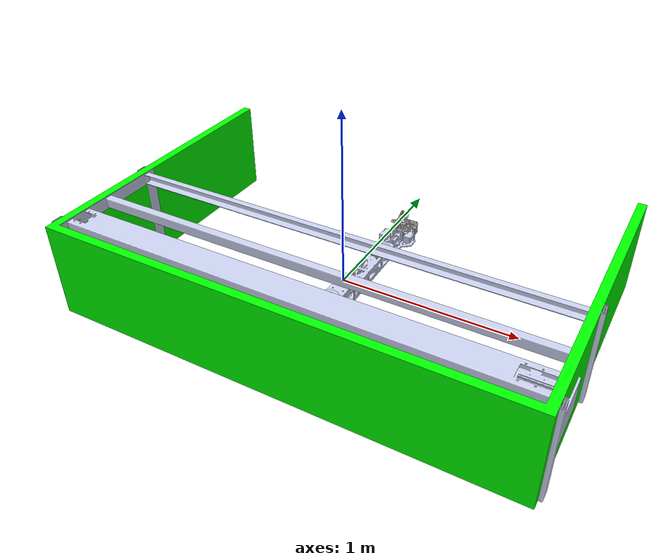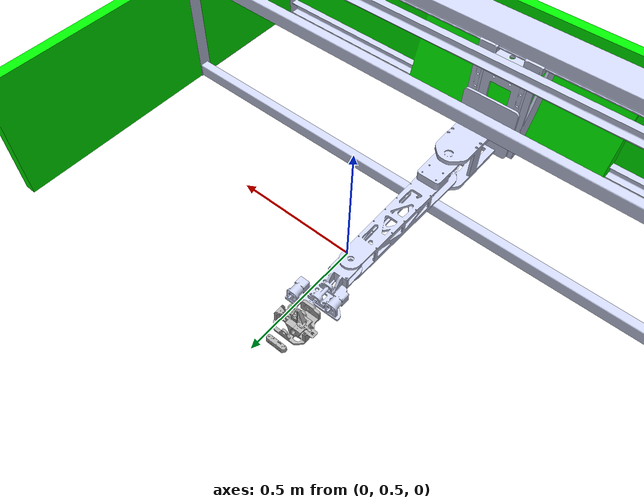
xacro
<?xml version="1.0"?>
<robot xmlns:xacro="http://www.ros.org/wiki/xacro" name="scara">

<xacro:arg name="interface" default="Position" />

<xacro:include filename="$(find scara)/urdf/joints_pos_and_orient.xacro" />
<xacro:include filename="$(find scara)/urdf/joints_positions_limits.xacro" />
<xacro:include filename="$(find scara)/urdf/joints_vel_effort_limits.xacro" />

<xacro:include filename="$(find scara)/urdf/transmission_interface.xacro" >
  <xacro:arg name="interface" value="$(arg interface)" />
</xacro:include>

<!-- workspace -->
  <link
    name="workspace">
    <visual>
      <origin
        xyz="0 0 0"
        rpy="0 0 0" />
      <geometry>
        <mesh
          filename="package://scara/meshes/workspace.STL" />
      </geometry>
      <material
        name="">
        <color
          rgba="0 1 0 1" />
      </material>
    </visual>
    <collision>
      <origin
        xyz="0 0 0"
        rpy="0 0 0" />
      <geometry>
        <mesh
          filename="package://scara/meshes/workspace.STL" />
      </geometry>
    </collision>
  </link>
  <joint
    name="joint_workspace"
    type="fixed">
    <origin
      xyz="-1.3 -0.71 0.35 "
      rpy="-1.57 0 0" />
    <parent
      link="base_link" />
    <child
      link="workspace" />
    <axis
      xyz="0 0 0"/>
  </joint>
<!-- workspace -->

  <link
    name="base_link">
    <visual>
      <origin
        xyz="0 0 0"
        rpy="0 0 0" />
      <geometry>
        <mesh
          filename="package://scara/meshes/base_link.STL" />
      </geometry>
      <material
        name="">
        <color
          rgba="0.792156862745098 0.819607843137255 0.933333333333333 1" />
      </material>
    </visual>
    <collision>
      <origin
        xyz="0 0 0"
        rpy="0 0 0" />
      <geometry>
        <mesh
          filename="package://scara/meshes/base_link.STL" />
      </geometry>
    </collision>
  </link>
  <link
    name="link1">
    <inertial>
      <origin
        xyz="1.19878552448249E-08 -0.0566665222113448 0.0555794084913767"
        rpy="0 0 0" />
      <mass
        value="4.040716147874" />
      <inertia
        ixx="0.0451677001380163"
        ixy="5.56860884483533E-11"
        ixz="3.39876367264579E-09"
        iyy="0.0192181187752075"
        iyz="0.00431944689682912"
        izz="0.0546998546523674" />
    </inertial>
    <visual>
      <origin
        xyz="0 0 0"
        rpy="0 0 0" />
      <geometry>
        <mesh
          filename="package://scara/meshes/link1.STL" />
      </geometry>
      <material
        name="">
        <color
          rgba="0.792156862745098 0.819607843137255 0.933333333333333 1" />
      </material>
    </visual>
    <collision>
      <origin
        xyz="0 0 0"
        rpy="0 0 0" />
      <geometry>
        <mesh
          filename="package://scara/meshes/link1_collision.STL" />
      </geometry>
    </collision>
  </link>
  <joint
    name="joint1"
    type="prismatic">
    <origin
      xyz="${joint1_origin_x} ${joint1_origin_y} ${joint1_origin_z}"
      rpy="${joint1_origin_roll} ${joint1_origin_pitch} ${joint1_origin_yaw}" />
    <parent
      link="base_link" />
    <child
      link="link1" />
    <axis
      xyz="${joint1_axis_x} ${joint1_axis_y} ${joint1_axis_z}"/>
    <limit
      lower="${joint1_limit_lower}"
      upper="${joint1_limit_upper}"
      effort="${joint1_effort_limit}"
      velocity="${joint1_vel_limit}" />
  </joint>
  <link
    name="link2">
    <inertial>
      <origin
        xyz="3.27615577968965E-05 -0.119452850148733 0.0850007806663469"
        rpy="0 0 0" />
      <mass
        value="2.71095927479154" />
      <inertia
        ixx="0.0168764628872358"
        ixy="-2.54489981102525E-07"
        ixz="3.69315769698535E-07"
        iyy="0.0127017150700867"
        iyz="-2.03836361116533E-06"
        izz="0.0193539492383244" />
    </inertial>
    <visual>
      <origin
        xyz="0 0 0"
        rpy="0 0 0" />
      <geometry>
        <mesh
          filename="package://scara/meshes/link2.STL" />
      </geometry>
      <material
        name="">
        <color
          rgba="0.792156862745098 0.819607843137255 0.933333333333333 1" />
      </material>
    </visual>
    <collision>
      <origin
        xyz="0 0 0"
        rpy="0 0 0" />
      <geometry>
        <mesh
          filename="package://scara/meshes/link2_collision.STL" />
      </geometry>
    </collision>
  </link>
  <joint
    name="joint2"
    type="prismatic">
    <origin
      xyz="${joint2_origin_x} ${joint2_origin_y} ${joint2_origin_z}"
      rpy="${joint2_origin_roll} ${joint2_origin_pitch} ${joint2_origin_yaw}"/>
    <parent
      link="link1" />
    <child
      link="link2" />
    <axis
      xyz="${joint2_axis_x} ${joint2_axis_y} ${joint2_axis_z}"/>
    <limit
      lower="${joint2_limit_lower}"
      upper="${joint2_limit_upper}"
      effort="${joint2_effort_limit}"
      velocity="${joint2_vel_limit}" />
  </joint>
  <link
    name="link3">
    <inertial>
      <origin
        xyz="2.55806299244636E-06 0.234601171013279 0.063528785222903"
        rpy="0 0 0" />
      <mass
        value="1.95480945031765" />
      <inertia
        ixx="0.046819248304117"
        ixy="-1.58937774983386E-08"
        ixz="-2.15436090230512E-07"
        iyy="0.00179698664917751"
        iyz="2.70552857525037E-05"
        izz="0.0482826739943195" />
    </inertial>
    <visual>
      <origin
        xyz="0 0 0"
        rpy="0 0 0" />
      <geometry>
        <mesh
          filename="package://scara/meshes/link3.STL" />
      </geometry>
      <material
        name="">
        <color
          rgba="0.792156862745098 0.819607843137255 0.933333333333333 1" />
      </material>
    </visual>
    <collision>
      <origin
        xyz="0 0 0"
        rpy="0 0 0" />
      <geometry>
        <mesh
          filename="package://scara/meshes/link3_collision.STL" />
      </geometry>
    </collision>
  </link>
  <joint
    name="joint3"
    type="revolute">
    <origin
      xyz="${joint3_origin_x} ${joint3_origin_y} ${joint3_origin_z}"
      rpy="${joint3_origin_roll} ${joint3_origin_pitch} ${joint3_origin_yaw}"/>
    <parent
      link="link2" />
    <child
      link="link3" />
    <axis
      xyz="${joint3_axis_x} ${joint3_axis_y} ${joint3_axis_z}"/>
    <limit
      lower="${joint3_limit_lower}"
      upper="${joint3_limit_upper}"
      effort="${joint3_effort_limit}"
      velocity="${joint3_vel_limit}" />
  </joint>
  <link
    name="link4">
    <inertial>
      <origin
        xyz="0.00254531084455429 0.131399127677691 -0.0378778716950119"
        rpy="0 0 0" />
      <mass
        value="10000.786723404193381" />
      <inertia
        ixx="0.000645667639668652"
        ixy="-0.000107269746287278"
        ixz="6.31996560397261E-08"
        iyy="0.000696920367916564"
        iyz="1.18658022128686E-06"
        izz="0.0012197310075711" />
    </inertial>
    <visual>
      <origin
        xyz="0 0 0"
        rpy="0 0 0" />
      <geometry>
        <mesh
          filename="package://scara/meshes/link4.STL" />
      </geometry>
      <material
        name="">
        <color
          rgba="0.792156862745098 0.819607843137255 0.933333333333333 1" />
      </material>
    </visual>
    <collision>
      <origin
        xyz="0 0 0"
        rpy="0 0 0" />
      <geometry>
        <mesh
          filename="package://scara/meshes/link4_collision.STL" />
      </geometry>
    </collision>
  </link>
  <joint
    name="joint4"
    type="revolute">
    <origin
      xyz="${joint4_origin_x} ${joint4_origin_y} ${joint4_origin_z}"
      rpy="${joint4_origin_roll} ${joint4_origin_pitch} ${joint4_origin_yaw}"/>
    <parent
      link="link3" />
    <child
      link="link4" />
    <axis
      xyz="${joint4_axis_x} ${joint4_axis_y} ${joint4_axis_z}"/>
    <limit
      lower="${joint4_limit_lower}"
      upper="${joint4_limit_upper}"
      effort="${joint4_effort_limit}"
      velocity="${joint4_vel_limit}" />
  </joint>
  <link
    name="link5">
    <inertial>
      <origin
        xyz="-0.0027169894383121 0.0819942184266494 0.00372948789989049"
        rpy="0 0 0" />
      <mass
        value="0.169198995178037" />
      <inertia
        ixx="2.64626448798208E-05"
        ixy="-2.52574711215771E-08"
        ixz="-1.82230368763991E-07"
        iyy="6.64396041019951E-05"
        iyz="-1.9773051111738E-09"
        izz="6.23548614781698E-05" />
    </inertial>
    <visual>
      <origin
        xyz="0 0 0"
        rpy="0 0 0" />
      <geometry>
        <mesh
          filename="package://scara/meshes/link5.STL" />
      </geometry>
      <material
        name="">
        <color
          rgba="0.686274509803922 0.686274509803922 0.686274509803922 1" />
      </material>
    </visual>
    <collision>
      <origin
        xyz="0 0 0"
        rpy="0 0 0" />
      <geometry>
        <mesh
          filename="package://scara/meshes/link5_collision.STL" />
      </geometry>
    </collision>
  </link>
  <joint
    name="joint5"
    type="revolute">
    <origin
      xyz="${joint5_origin_x} ${joint5_origin_y} ${joint5_origin_z}"
      rpy="${joint5_origin_roll} ${joint5_origin_pitch} ${joint5_origin_yaw}"/>
    <parent
      link="link4" />
    <child
      link="link5" />
    <axis
      xyz="${joint5_axis_x} ${joint5_axis_y} ${joint5_axis_z}"/>
    <limit
      lower="${joint5_limit_lower}"
      upper="${joint5_limit_upper}"
      effort="${joint5_effort_limit}"
      velocity="${joint5_vel_limit}" />
  </joint>
  <link
    name="camera">
    <inertial>
      <origin
        xyz="-1.26010313294955E-14 6.88338275267597E-15 -0.000249999999813635"
        rpy="0 0 0" />
      <mass
        value="3.92699081698724E-05" />
      <inertia
        ixx="2.46255049148575E-10"
        ixy="-1.62927787543527E-36"
        ixz="-8.75268974036926E-22"
        iyy="2.46255049148575E-10"
        iyz="4.55231734668369E-25"
        izz="4.90873852123406E-10" />
    </inertial>
    <visual>
      <origin
        xyz="0 0 0"
        rpy="0 0 0" />
      <geometry>
        <mesh
          filename="package://scara/meshes/camera.STL" />
      </geometry>
      <material
        name="">
        <color
          rgba="1 0.168627450980392 0.168627450980392 1" />
      </material>
    </visual>
    <collision>
      <origin
        xyz="0 0 0"
        rpy="0 0 0" />
      <geometry>
        <mesh
          filename="package://scara/meshes/camera.STL" />
      </geometry>
    </collision>
  </link>
  <joint
    name="joint_camera "
    type="fixed">
    <origin
      xyz="${joint_camera_origin_x} ${joint_camera_origin_y} ${joint_camera_origin_z}"
      rpy="${joint_camera_origin_roll} ${joint_camera_origin_pitch} ${joint_camera_origin_yaw}"/>
    <parent
      link="link5" />
    <child
      link="camera" />
    <axis
      xyz="${joint_camera_axis_x} ${joint_camera_axis_y} ${joint_camera_axis_z}"/>
    <limit
      lower="0"
      upper="0"
      effort="0"
      velocity="0" />
  </joint>
  <link
    name="effector">
    <inertial>
      <origin
        xyz="-2.16248243270489E-13 7.21644966006352E-15 0.000250000000068184"
        rpy="0 0 0" />
      <mass
        value="0.00015707963267949" />
      <inertia
        ixx="3.93026330933473E-09"
        ixy="-2.6919120769085E-35"
        ixz="-1.40394202554195E-20"
        iyy="3.93026330933473E-09"
        iyz="7.54624742293239E-24"
        izz="7.85398163397448E-09" />
    </inertial>
    <visual>
      <origin
        xyz="0 0 0"
        rpy="0 0 0" />
      <geometry>
        <mesh
          filename="package://scara/meshes/effector.STL" />
      </geometry>
      <material
        name="">
        <color
          rgba="0.341176470588235 0.83921568627451 0.411764705882353 1" />
      </material>
    </visual>
    <collision>
      <origin
        xyz="0 0 0"
        rpy="0 0 0" />
      <geometry>
        <mesh
          filename="package://scara/meshes/effector.STL" />
      </geometry>
    </collision>
  </link>
  <joint
    name="joint7"
    type="revolute">
    <origin
      xyz="${joint7_origin_x} ${joint7_origin_y} ${joint7_origin_z}"
      rpy="${joint7_origin_roll} ${joint7_origin_pitch} ${joint7_origin_yaw}"/>
    <parent
      link="camera" />
    <child
      link="effector" />
    <axis
      xyz="${joint7_axis_x} ${joint7_axis_y} ${joint7_axis_z}"/>
    <limit
      lower="${joint7_limit_lower}"
      upper="${joint7_limit_upper}"
      effort="${joint7_effort_limit}"
      velocity="${joint7_vel_limit}" />
  </joint>
  <link
    name="link6">
    <inertial>
      <origin
        xyz="-0.024961 0.061805 -0.01112"
        rpy="0 0 0" />
      <mass
        value="0.038714" />
      <inertia
        ixx="7.954E-06"
        ixy="-3.1321E-09"
        ixz="-2.223E-07"
        iyy="6.5369E-06"
        iyz="1.6866E-07"
        izz="6.7152E-06" />
    </inertial>
    <visual>
      <origin
        xyz="0 0 0"
        rpy="0 0 0" />
      <geometry>
        <mesh
          filename="package://scara/meshes/passive_link3.STL" />
      </geometry>
      <material
        name="">
        <color
          rgba="0.68627 0.68627 0.68627 1" />
      </material>
    </visual>
    <collision>
      <origin
        xyz="0 0 0"
        rpy="0 0 0" />
      <geometry>
        <mesh
          filename="package://scara/meshes/passive_link3_collision.STL" />
      </geometry>
    </collision>
  </link>
  <joint
    name="joint6"
    type="prismatic">
    <origin
      xyz="${joint6_origin_x} ${joint6_origin_y} ${joint6_origin_z}"
      rpy="${joint6_origin_roll} ${joint6_origin_pitch} ${joint6_origin_yaw}"/>
    <parent
      link="effector" />
    <child
      link="link6" />
    <axis
      xyz="${joint6_axis_x} ${joint6_axis_y} ${joint6_axis_z}"/>
    <limit
      lower="${joint6_limit_lower}"
      upper="${joint6_limit_upper}"
      effort="${joint6_effort_limit}"
      velocity="${joint6_vel_limit}" />
  </joint>
  <link
    name="link6_mimic">
    <inertial>
      <origin
        xyz="-0.024961 0.061805 -0.01112"
        rpy="0 0 0" />
      <mass
        value="0.038714" />
      <inertia
        ixx="7.954E-06"
        ixy="-3.1321E-09"
        ixz="-2.223E-07"
        iyy="6.5369E-06"
        iyz="1.6866E-07"
        izz="6.7152E-06" />
    </inertial>
    <visual>
      <origin
        xyz="0 0 0"
        rpy="0 0 0" />
      <geometry>
        <mesh
          filename="package://scara/meshes/passive_link3.STL" />
      </geometry>
      <material
        name="">
        <color
          rgba="0.68627 0.68627 0.68627 1" />
      </material>
    </visual>
    <collision>
      <origin
        xyz="0 0 0"
        rpy="0 0 0" />
      <geometry>
        <mesh
          filename="package://scara/meshes/passive_link3_collision.STL" />
      </geometry>
    </collision>
  </link>
  <joint
    name="joint6_mimic"
    type="prismatic">
    <origin
      xyz="${joint6_mimic_origin_x} ${joint6_mimic_origin_y} ${joint6_mimic_origin_z}"
      rpy="${joint6_mimic_origin_roll} ${joint6_mimic_origin_pitch} ${joint6_mimic_origin_yaw}"/>
    <parent
      link="link6" />
    <child
      link="link6_mimic" />
    <axis
      xyz="${joint6_mimic_axis_x} ${joint6_mimic_axis_y} ${joint6_mimic_axis_z}"/>
    <limit
      lower="${joint6_mimic_limit_lower}"
      upper="${joint6_mimic_limit_upper}"
      effort="${joint6_mimic_effort_limit}"
      velocity="${joint6_mimic_vel_limit}" />
    <mimic
      joint="joint6"
      multiplier="2.0"
      offset="0.0" />
  </joint>
</robot>

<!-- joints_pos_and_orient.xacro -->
<robot xmlns:xacro="http://www.ros.org/wiki/xacro">

<xacro:property name="PI" value="3.14159265358979" />
<xacro:property name="R1" value="0.62" />
<xacro:property name="Zx" value="0.0" />
<xacro:property name="Zy" value="0.0" />
<xacro:property name="Zz" value="0.0" />
<xacro:property name="C1x" value="0" />
<xacro:property name="C1y" value="0.005" />
<xacro:property name="C1z" value="-0.0035925695657901616" />
<xacro:property name="C2x" value="0.0" />
<xacro:property name="C2y" value="0.02" />
<xacro:property name="C2z" value="0.012105270670150039" />
<xacro:property name="Ax" value="0.0" />
<xacro:property name="Ay" value="0.0" />
<xacro:property name="Az" value="0.0" />

<!-- MARKER or CAMERA -->
<xacro:property name="MorC" value="False"/>
<xacro:if value="${MorC}">
  <!--MARKER-->
  <xacro:property name="Mx" value="0.057" />
  <xacro:property name="My" value="0.12" />
  <xacro:property name="Mz" value="-0.030" />
  <xacro:property name="MR" value="0" />
  <xacro:property name="MP" value="0" />
  <xacro:property name="MY" value="0" />
  <xacro:property name="Ex" value="${0.0-Mx}" />
  <xacro:property name="Ey" value="${0.088-My}" />
  <xacro:property name="Ez" value="${0.100-Mz}" />
  <xacro:property name="ER" value="0" />
  <xacro:property name="EP" value="0" />
  <xacro:property name="EY" value="0" />
</xacro:if>
<xacro:unless value="${MorC}">
  <!--CAMERA-->
<!-- CAMERA PRZESUNIETA -5mm w osi X -->
  <xacro:property name="Mx" value="0.032601745797096515" />
  <xacro:property name="My" value="0.18453171300522642" />
  <xacro:property name="Mz" value="-0.016973848757969097" />
  <xacro:property name="MR" value="0.03229564301791958" />
  <xacro:property name="MP" value="0.01538194006569883" />
  <xacro:property name="MY" value="3.0730648401106975" />
  <xacro:property name="Ex" value="0.021813034020402734" />
  <xacro:property name="Ey" value="0.10121358042023153" />
  <xacro:property name="Ez" value="0.11614025325711313" />
  <xacro:property name="ER" value="0.033275922973526405" />
  <xacro:property name="EP" value="0.013126573220331348" />
  <xacro:property name="EY" value="-3.072598006090227" />
</xacro:unless>

<!-- Joint between baselink and link1 (axis X) -->
<xacro:property name="joint1_origin_x"           value="0.0" />
<xacro:property name="joint1_origin_y"           value="-0.482199999592743" />
<xacro:property name="joint1_origin_z"           value="0.0172" />
<xacro:property name="joint1_origin_roll"        value="-${PI/2}" />
<xacro:property name="joint1_origin_pitch"       value="0.0" />
<xacro:property name="joint1_origin_yaw"         value="-${PI}" />

<xacro:property name="joint1_axis_x"             value="1" />
<xacro:property name="joint1_axis_y"             value="0" />
<xacro:property name="joint1_axis_z"             value="0" />

<!-- Joint between link1 and link2 (axis Z) -->
<xacro:property name="joint2_origin_x"           value="0.0" />
<xacro:property name="joint2_origin_y"           value="0.0" />
<xacro:property name="joint2_origin_z"           value="-0.052" />
<xacro:property name="joint2_origin_roll"        value="${Zx + PI/2}" />
<xacro:property name="joint2_origin_pitch"       value="${Zz}" />     <!-- ZAMIENIONE OSIE! -->
<xacro:property name="joint2_origin_yaw"         value="${-Zy + PI}" /><!-- ZAMIENIONE OSIE! -->

<xacro:property name="joint2_axis_x"             value="0" />
<xacro:property name="joint2_axis_y"             value="0" />
<xacro:property name="joint2_axis_z"             value="1" />

<!-- Joint between link2 and link3 (axis C1 - big arm) -->
<xacro:property name="joint3_origin_x"           value="0.0" />
<xacro:property name="joint3_origin_y"           value="-0.285" />
<xacro:property name="joint3_origin_z"           value="0.0407" />
<xacro:property name="joint3_origin_roll"        value="${C1x}" />
<xacro:property name="joint3_origin_pitch"       value="${-C1y}" />
<xacro:property name="joint3_origin_yaw"         value="${PI - C1z}" />

<xacro:property name="joint3_axis_x"             value="0" />
<xacro:property name="joint3_axis_y"             value="0" />
<xacro:property name="joint3_axis_z"             value="1" />

<!-- Joint between link3 and link4 (axis C2 - small arm) -->
<xacro:property name="joint4_origin_x"           value="0.0" />
<xacro:property name="joint4_origin_y"           value="${R1}" />
<xacro:property name="joint4_origin_z"           value="0.0436798" />
<xacro:property name="joint4_origin_roll"        value="${-PI+C2x}" />
<xacro:property name="joint4_origin_pitch"       value="${-C2y}" />
<xacro:property name="joint4_origin_yaw"         value="${PI-C2z}" />

<xacro:property name="joint4_axis_x"             value="0" />
<xacro:property name="joint4_axis_y"             value="0" />
<xacro:property name="joint4_axis_z"             value="1" />

<!-- Joint between link4 and link5 (axis A - inclination of the gripper) -->
<xacro:property name="joint5_origin_x"           value="0.0" />
<xacro:property name="joint5_origin_y"           value="0.23389" />
<xacro:property name="joint5_origin_z"           value="-0.03732" />
<xacro:property name="joint5_origin_roll"        value="${-Ax}" />
<xacro:property name="joint5_origin_pitch"       value="${-Ay}" />
<xacro:property name="joint5_origin_yaw"         value="${Az}" />

<xacro:property name="joint5_axis_x"             value="0" />
<xacro:property name="joint5_axis_y"             value="-1" />
<xacro:property name="joint5_axis_z"             value="0" />

<!-- Joint between link5 and camera (additional joint - allways fixed) -->
<xacro:property name="joint_camera_origin_x"     value="${Mx}" />
<xacro:property name="joint_camera_origin_y"     value="${My}" />
<xacro:property name="joint_camera_origin_z"     value="${Mz}" />
<xacro:property name="joint_camera_origin_roll"  value="${MR}" />
<xacro:property name="joint_camera_origin_pitch" value="${MP}" />
<xacro:property name="joint_camera_origin_yaw"   value="${MY}" />

<xacro:property name="joint_camera_axis_x"       value="0" />
<xacro:property name="joint_camera_axis_y"       value="0" />
<xacro:property name="joint_camera_axis_z"     	 value="1" />

<!-- Joint between camera and effector (additional joint - degree of freedom) -->
<xacro:property name="joint7_origin_x"           value="${Ex}" />
<xacro:property name="joint7_origin_y"           value="${Ey}" />
<xacro:property name="joint7_origin_z"           value="${Ez}" />
<xacro:property name="joint7_origin_roll"        value="${ER}" />
<xacro:property name="joint7_origin_pitch"       value="${EP}" />
<xacro:property name="joint7_origin_yaw"         value="${EY}" />

<xacro:property name="joint7_axis_x"             value="1" />
<xacro:property name="joint7_axis_y"             value="0" />
<xacro:property name="joint7_axis_z"             value="0" />

<!-- Joint between effector and gripper (axis V - gripper) -->
<xacro:property name="joint6_origin_x" 		       value="0.004" />
<xacro:property name="joint6_origin_y" 		       value="-0.062194" />
<xacro:property name="joint6_origin_z" 		       value="-0.055036" />
<xacro:property name="joint6_origin_roll" 	     value="0.0" />
<xacro:property name="joint6_origin_pitch" 	     value="0.0" />
<xacro:property name="joint6_origin_yaw" 	       value="0" />

<xacro:property name="joint6_axis_x" 		         value="-1" />
<xacro:property name="joint6_axis_y" 		         value="0" />
<xacro:property name="joint6_axis_z" 		         value="0" />

<!-- Joint between gripper and mimic_gripper (additional joint - mimic gripper) -->
<xacro:property name="joint6_mimic_origin_x" 	   value="-0.018" />
<xacro:property name="joint6_mimic_origin_y" 	   value="0.125" />
<xacro:property name="joint6_mimic_origin_z" 	   value="0.0" />
<xacro:property name="joint6_mimic_origin_roll"  value="0.0" />
<xacro:property name="joint6_mimic_origin_pitch" value="0.0" />
<xacro:property name="joint6_mimic_origin_yaw"   value="${PI}" />

<xacro:property name="joint6_mimic_axis_x" 	     value="-1" />
<xacro:property name="joint6_mimic_axis_y" 	     value="0" />
<xacro:property name="joint6_mimic_axis_z" 	     value="0" />

</robot>

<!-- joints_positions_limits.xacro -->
<robot xmlns:xacro="http://www.ros.org/wiki/xacro">

<!-- Joint between baselink and link1 (axis X) -->
<xacro:property name="joint1_limit_lower"         value="-0.9" />
<xacro:property name="joint1_limit_upper"         value="1.0" />

<!-- Joint between link1 and link2 (axis Z) -->
<xacro:property name="joint2_limit_lower"         value="-0.13" />
<xacro:property name="joint2_limit_upper"         value="0.0" />

<!-- Joint between link2 and link3 (axis C1 - big arm) -->
<xacro:property name="joint3_limit_lower"         value="-1.80" />
<xacro:property name="joint3_limit_upper"         value="1.80" />

<!-- Joint between link3 and link4 (axis C2 - small arm) -->
<xacro:property name="joint4_limit_lower"         value="-2.0" />
<xacro:property name="joint4_limit_upper"         value="2.0" />

<!-- Joint between link4 and link5 (axis A - inclination of the gripper) -->
<xacro:property name="joint5_limit_lower"         value="-0.65" />
<xacro:property name="joint5_limit_upper"         value="0.65" />

<!-- Joint between camera and effector (additional joint - degree of freedom) -->
<xacro:property name="joint7_limit_lower"         value="-0.1" />
<xacro:property name="joint7_limit_upper"         value="0.1" />

<!-- Joint between effector and link6 (axis V - gripper) -->
<xacro:property name="joint6_limit_lower"         value="0.015" />
<xacro:property name="joint6_limit_upper"         value="0.0325" />

<!-- Joint between link6 and link6_mimic (axis V - gripper) -->
<xacro:property name="joint6_mimic_limit_lower"   value="-1.0" />
<xacro:property name="joint6_mimic_limit_upper"   value="1.0" />

</robot>

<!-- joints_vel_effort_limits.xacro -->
<robot xmlns:xacro="http://www.ros.org/wiki/xacro">

<!-- Joint between baselink and link1 (axis X) -->
<xacro:property name="joint1_vel_limit"             value="1.9" />
<xacro:property name="joint1_effort_limit"          value="10.0" />

<!-- Joint between link1 and link2 (axis Z) -->
<xacro:property name="joint2_vel_limit"             value="0.245" />
<xacro:property name="joint2_effort_limit"          value="10.0" />

<!-- Joint between link2 and link3 (axis C1 - big arm) -->
<xacro:property name="joint3_vel_limit"             value="5.5" />
<xacro:property name="joint3_effort_limit"          value="10.0" />

<!-- Joint between link3 and link4 (axis C2 - small arm) -->
<xacro:property name="joint4_vel_limit"             value="5.5" />
<xacro:property name="joint4_effort_limit"          value="10.0" />

<!-- Joint between link4 and link5 (axis A - inclination of the gripper) -->
<xacro:property name="joint5_vel_limit"             value="10.0" />
<xacro:property name="joint5_effort_limit"          value="10.0" />

<!-- Joint between camera and effector (additional joint - degree of freedom) -->
<xacro:property name="joint7_vel_limit"             value="10.0" />
<xacro:property name="joint7_effort_limit"          value="10.0" />

<!-- Joint between effector and link6 (axis V - gripper) -->
<xacro:property name="joint6_vel_limit"             value="1.0" />
<xacro:property name="joint6_effort_limit"          value="10.0" />

<!-- Joint between link6 and link6_mimic (axis V - gripper) -->
<xacro:property name="joint6_mimic_vel_limit"       value="1.0" />
<xacro:property name="joint6_mimic_effort_limit"    value="10.0" />

</robot>
